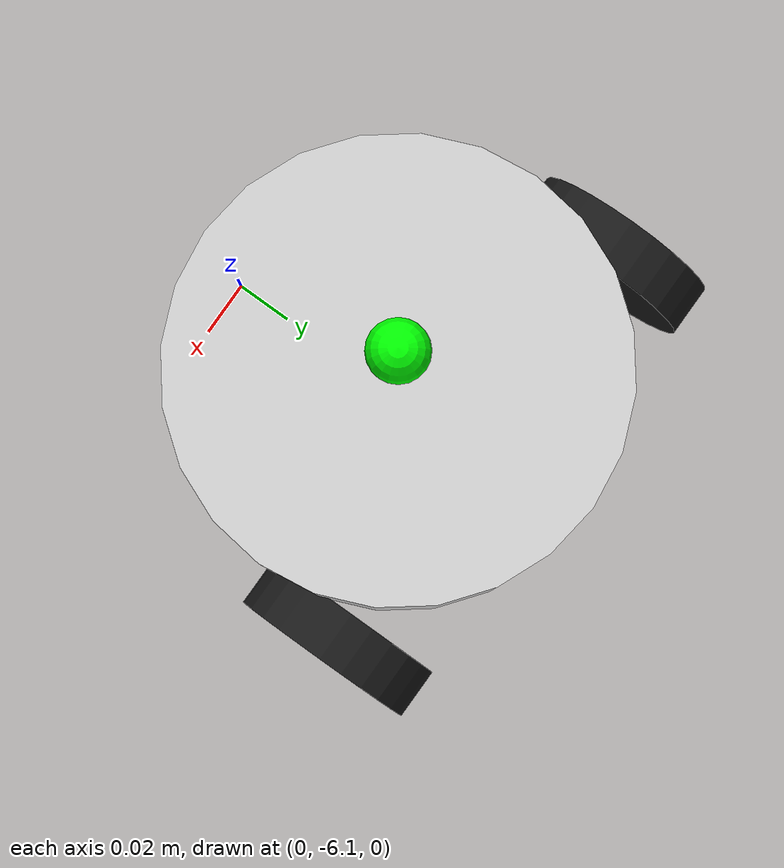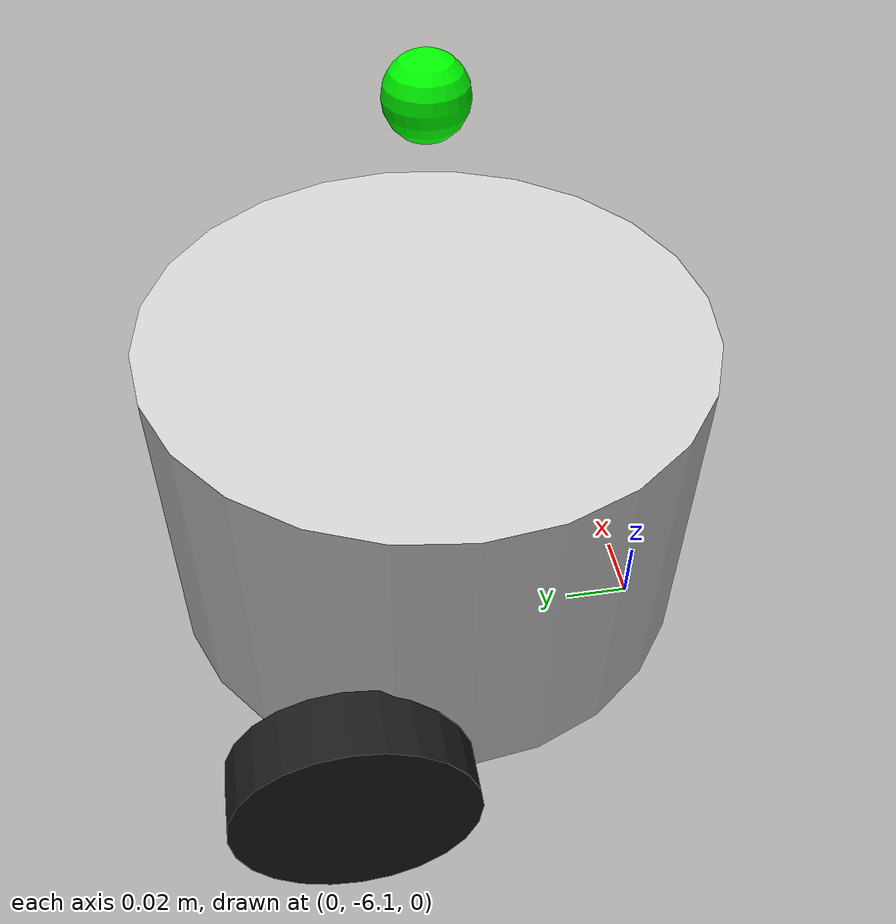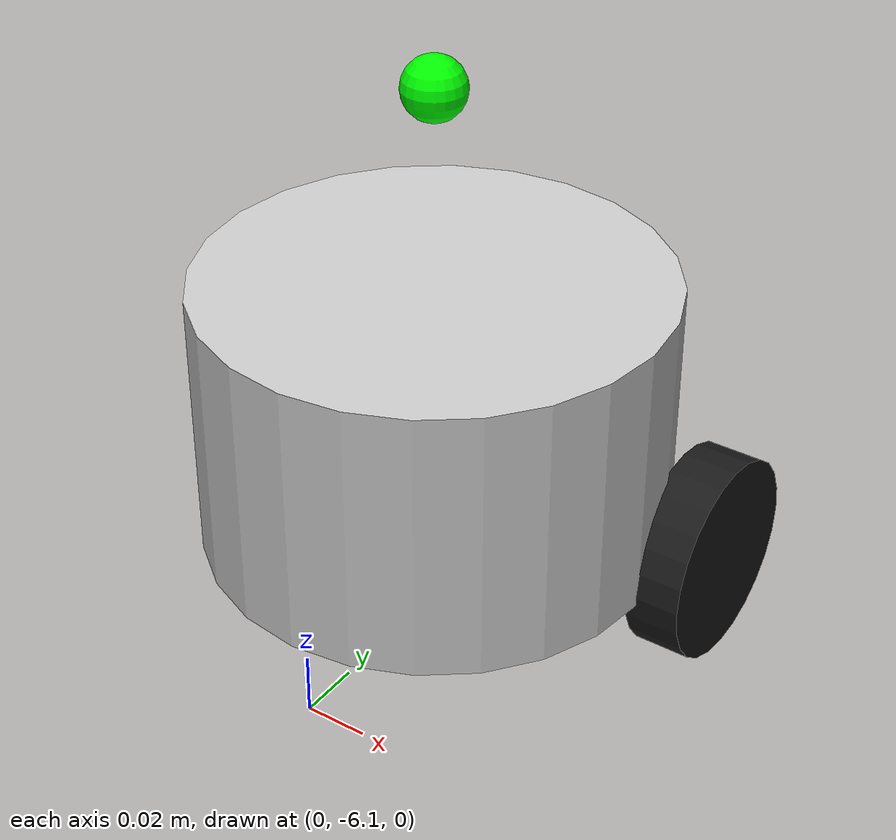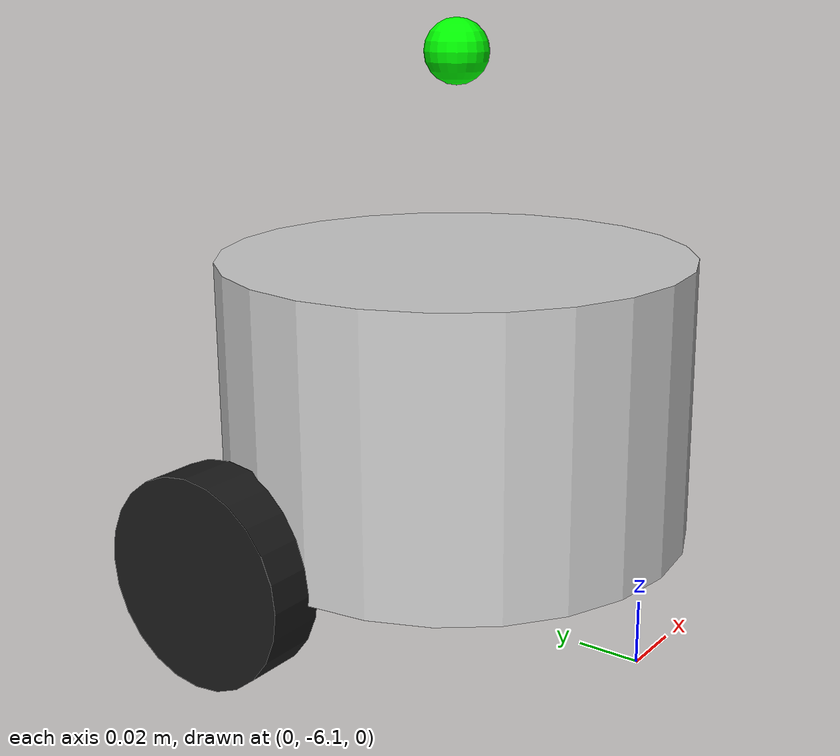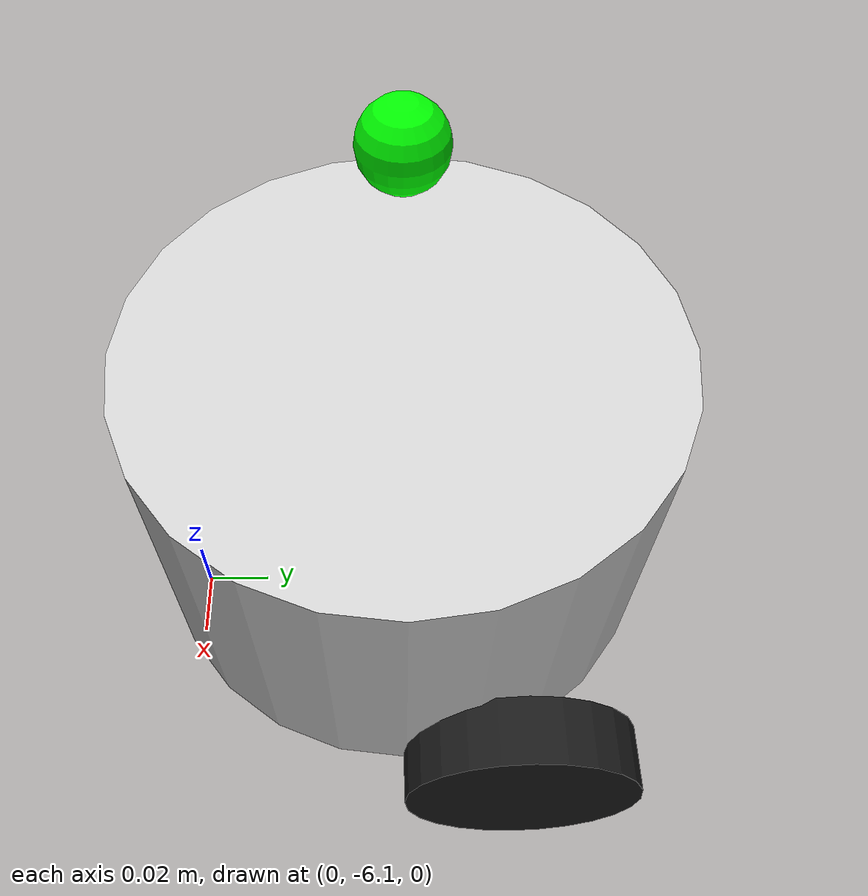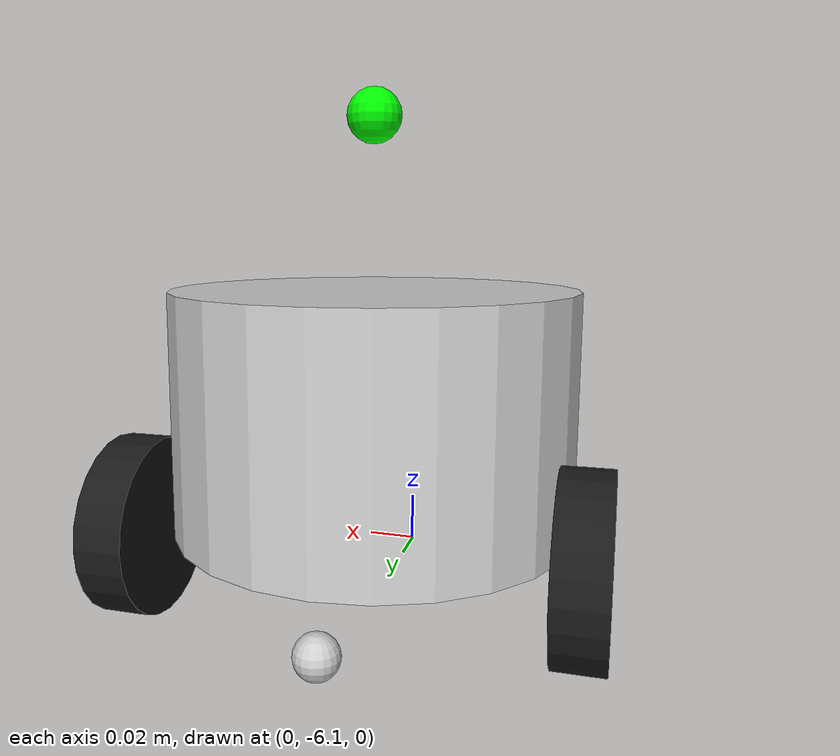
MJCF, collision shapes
<mujoco model="turtlebot3_burger_preview">
  <compiler angle="radian" meshdir="meshes" autolimits="true"/>

  <visual>
    <headlight diffuse="0.6 0.6 0.6" ambient="0.3 0.3 0.3" specular="0 0 0"/>
    <rgba haze="0.15 0.25 0.35 1"/>
    <global azimuth="-120" elevation="-20"/>
  </visual>

  <asset>
    <texture type="skybox" builtin="gradient" rgb1="0.3 0.5 0.7" rgb2="0 0 0" width="512" height="512"/>
    <texture name="plane_tex" type="2d" builtin="checker" rgb1="0.2 0.3 0.4" rgb2="0.1 0.15 0.2" width="512" height="512" mark="cross" markrgb="0.8 0.8 0.8"/>
    <material name="plane_mat" texture="plane_tex" texrepeat="5 5" reflectance="0.2"/>
  </asset>

  <worldbody>
    <light pos="0 0 2" dir="0 0 -1" directional="true"/>
    <geom name="ground" type="plane" size="5 5 0.1" material="plane_mat"/>
  </worldbody>

  <include file="turtlebot3_burger.xml"/>
</mujoco>

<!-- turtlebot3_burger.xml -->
<mujoco model="turtlebot3_burger">
  <compiler angle="radian" autolimits="true"/>

  <default>
    <default class="visual">
      <geom group="1" type="mesh" contype="0" conaffinity="0"/>
    </default>
    <default class="collision">
      <geom group="0" rgba="0.8 0.8 0.8 1" solref="0.01 1" solimp="0.9 0.95 0.001 0.5 2"/>
    </default>
    <default class="wheel">
      <geom group="0" type="cylinder" size="0.033 0.009" zaxis="0 1 0" friction="1.5 0.005 0.0001" condim="3" solref="0.01 1" solimp="0.9 0.95 0.001 0.5 2"/>
    </default>
  </default>

  <asset>
    <!-- 3D 视觉网格资产 (自包含 STL，相对路径由引用上层 meshdir 统一定义) -->
    <mesh name="burger_base" file="bases/burger_base.stl" scale="0.001 0.001 0.001"/>
    <mesh name="left_tire" file="wheels/left_tire.stl" scale="0.001 0.001 0.001"/>
    <mesh name="right_tire" file="wheels/right_tire.stl" scale="0.001 0.001 0.001"/>
    <mesh name="lds" file="sensors/lds.stl" scale="0.001 0.001 0.001"/>

    <!-- 材质配置 -->
    <material name="dark_grey" rgba="0.2 0.2 0.2 1"/>
    <material name="tire_black" rgba="0.1 0.1 0.1 1"/>
    <material name="sensor_black" rgba="0.05 0.05 0.05 1"/>
    <material name="accent_yellow" rgba="0.9 0.7 0.1 1"/>
  </asset>

  <worldbody>
    <!-- 机器人基座：初始预置于南侧车道 (0, -6.0, 0.03)，面朝正北 (绕 Z 轴旋转 90 度) -->
    <body name="base_link" pos="0 -6.0 0.010" euler="0 0 1.5707963">
      <freejoint name="root"/>
      <inertial mass="1.0" pos="-0.032 0 0.07" diaginertia="0.008 0.008 0.008"/>

      <!-- 底盘主体外观 (STL) -->
      <geom type="mesh" mesh="burger_base" pos="0 0 0" class="visual" material="dark_grey"/>
      <geom type="mesh" mesh="lds" pos="-0.032 0 0.172" class="visual" material="sensor_black"/>

      <!-- 底盘物理碰撞体 (轻量几何体，确保 CPU 毫秒级解算) -->
      <geom type="cylinder" size="0.075 0.045" pos="-0.032 0 0.065" class="collision" mass="0.82"/>

      <!-- 支撑脚轮 (前万向支点与后万向支点，低滚动摩擦) -->
      <geom type="sphere" size="0.008" pos="0.035 0 -0.002" friction="0.01 0.005 0.0001" condim="1" class="collision" mass="0.02"/>
      <geom type="sphere" size="0.008" pos="-0.049 0 -0.002" friction="0.01 0.005 0.0001" condim="1" class="collision" mass="0.02"/>

      <!-- 传感器安装站点 (Site) -->
      <site name="imu_site" pos="0 0 0.068" size="0.008" rgba="1 0 0 1"/>
      <site name="lidar_site" pos="-0.032 0 0.172" size="0.01" rgba="0 1 0 1"/>

      <!-- 左驱动轮 -->
      <body name="wheel_left_link" pos="0 0.080 0.023">
        <joint name="wheel_left_joint" type="hinge" axis="0 1 0" damping="0.05"/>
        <inertial mass="0.08" pos="0 0 0" diaginertia="0.0005 0.001 0.0005"/>
        <geom class="wheel" mass="0.05" material="tire_black"/>
        <geom type="mesh" mesh="left_tire" pos="0 0 0" class="visual" material="tire_black"/>
      </body>

      <!-- 右驱动轮 -->
      <body name="wheel_right_link" pos="0 -0.080 0.023">
        <joint name="wheel_right_joint" type="hinge" axis="0 1 0" damping="0.05"/>
        <inertial mass="0.08" pos="0 0 0" diaginertia="0.0005 0.001 0.0005"/>
        <geom class="wheel" mass="0.05" material="tire_black"/>
        <geom type="mesh" mesh="right_tire" pos="0 0 0" class="visual" material="tire_black"/>
      </body>
    </body>
  </worldbody>

  <actuator>
    <!-- 速度控制器：输入单位为 rad/s -->
    <velocity name="wheel_left_motor" joint="wheel_left_joint" kv="0.2" ctrlrange="-15 15"/>
    <velocity name="wheel_right_motor" joint="wheel_right_joint" kv="0.2" ctrlrange="-15 15"/>
  </actuator>

  <sensor>
    <!-- 6 轴高频 IMU 动力学输出 -->
    <accelerometer name="imu_accel" site="imu_site"/>
    <gyro name="imu_gyro" site="imu_site"/>
  </sensor>
</mujoco>
